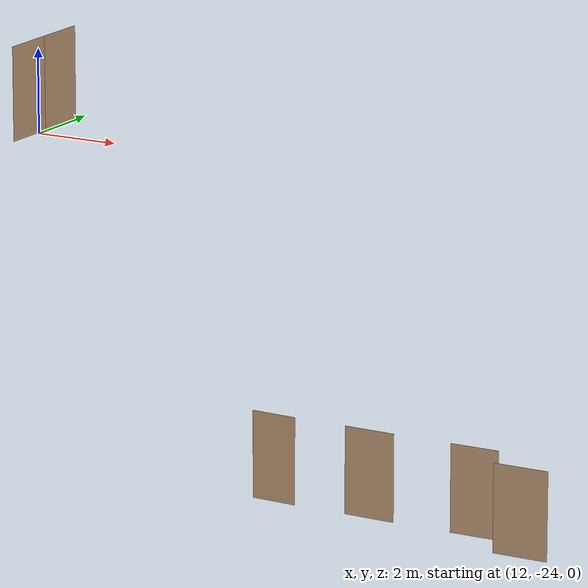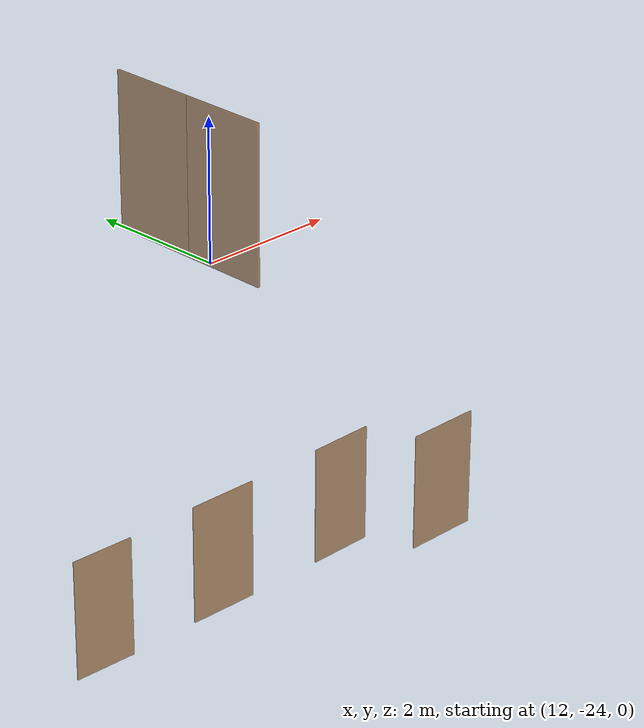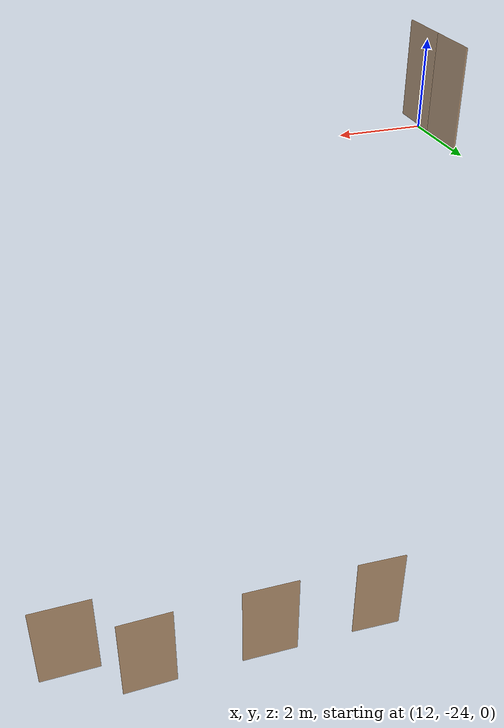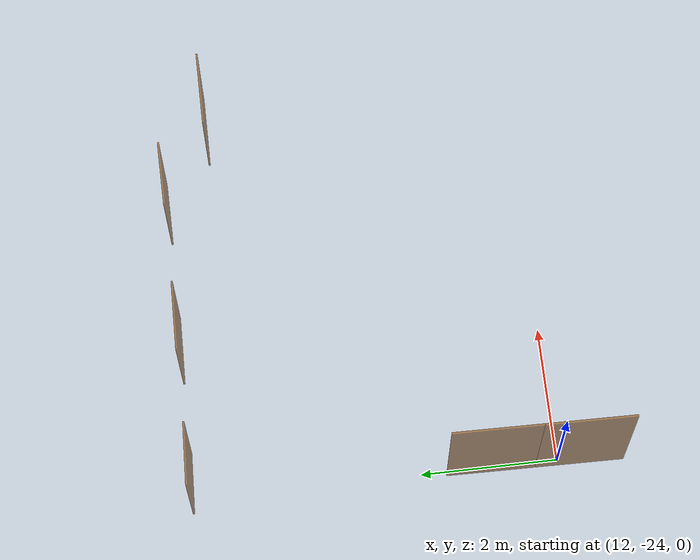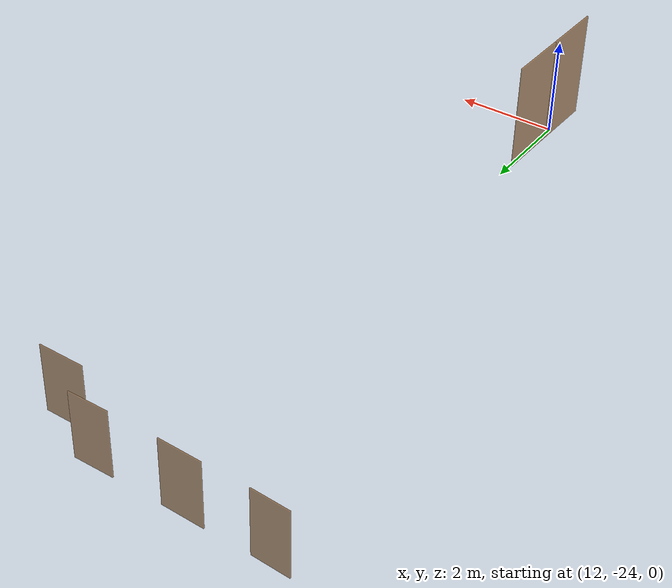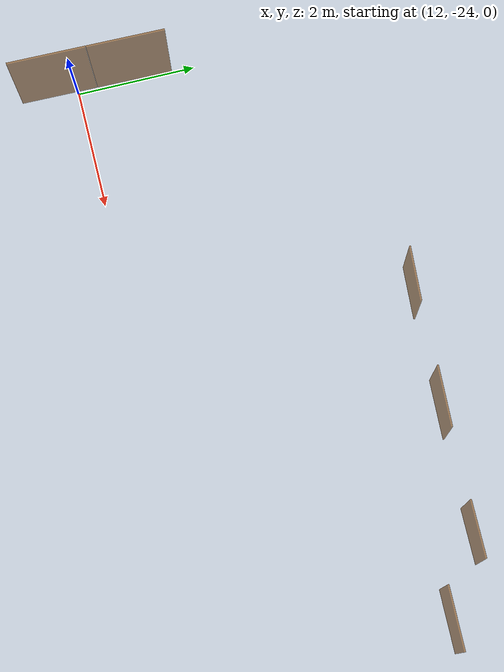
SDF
<sdf version="1.7">
 <world name="sim_world">
  <model name="door8">
   <pose>11.94001371385336 -23.66581940273805 0.0 0 0 -1.5875025411483974</pose>
   <link name="right">
    <pose>0.6496603259492142 0 1.11 0 0 0</pose>
    <visual name="right_visual">
     <geometry><box><size>1.2893206518984284 0.03 2.2</size></box></geometry>
     <material>
      <ambient>0.5 0.25 0 0.6</ambient>
      <diffuse>0.5 0.25 0 0.6</diffuse>
      <pbr><metal><metalness>0.0</metalness></metal></pbr>
     </material>
    </visual>
    <collision name="right_collision">
     <geometry><box><size>1.2893206518984284 0.03 2.2</size></box></geometry>
     <surface><contact><collide_bitmask>0x02</collide_bitmask></contact></surface>
    </collision>
    <inertial>
     <mass>50.0</mass>
     <inertia><ixx>20.17041666666667</ixx><iyy>27.093115597549126</iyy><izz>6.930198930882452</izz></inertia>
    </inertial>
   </link>
   <joint name="right_joint" type="revolute">
    <parent>world</parent>
    <child>right</child>
    <axis><xyz>0 0 -1</xyz><limit><lower>0</lower><upper>1.57</upper></limit></axis>
    <pose>0.6496603259492142 0 0 0 0 0</pose>
   </joint>
   <link name="left">
    <pose>-0.6496603259492142 0 1.11 0 0 0</pose>
    <visual name="left_visual">
     <geometry><box><size>1.2893206518984284 0.03 2.2</size></box></geometry>
     <material>
      <ambient>0.5 0.25 0 0.6</ambient>
      <diffuse>0.5 0.25 0 0.6</diffuse>
      <pbr><metal><metalness>0.0</metalness></metal></pbr>
     </material>
    </visual>
    <collision name="left_collision">
     <geometry><box><size>1.2893206518984284 0.03 2.2</size></box></geometry>
     <surface><contact><collide_bitmask>0x02</collide_bitmask></contact></surface>
    </collision>
    <inertial>
     <mass>50.0</mass>
     <inertia><ixx>20.17041666666667</ixx><iyy>27.093115597549126</iyy><izz>6.930198930882452</izz></inertia>
    </inertial>
   </link>
   <joint name="left_joint" type="revolute">
    <parent>world</parent>
    <child>left</child>
    <axis><xyz>0 0 -1</xyz><limit><lower>-1.57</lower><upper>0</upper></limit></axis>
    <pose>-0.6496603259492142 0 0 0 0 0</pose>
   </joint>
   <plugin name="register_component" filename="libregister_component.so">
    <component name="Door">
     <v_max_door>0.5</v_max_door>
     <a_max_door>0.3</a_max_door>
     <a_nom_door>0.15</a_nom_door>
     <dx_min_door>0.01</dx_min_door>
     <f_max_door>500.0</f_max_door>
     <ros_interface>true</ros_interface>
     <door name="door8" type="DoubleSwingDoor" left_joint_name="left_joint" right_joint_name="right_joint"/>
    </component>
   </plugin>
  </model>
  <model name="door11">
   <pose>22.026146063012423 -19.219296318400083 -10.0 0 0 3.135121069938691</pose>
   <link name="right">
    <pose>0 0 1.11 0 0 0</pose>
    <visual name="right_visual">
     <geometry><box><size>1.400921036440383 0.03 2.2</size></box></geometry>
     <material>
      <ambient>0.5 0.25 0 0.6</ambient>
      <diffuse>0.5 0.25 0 0.6</diffuse>
      <pbr><metal><metalness>0.0</metalness></metal></pbr>
     </material>
    </visual>
    <collision name="right_collision">
     <geometry><box><size>1.400921036440383 0.03 2.2</size></box></geometry>
     <surface><contact><collide_bitmask>0x02</collide_bitmask></contact></surface>
    </collision>
    <inertial>
     <mass>50.0</mass>
     <inertia><ixx>20.17041666666667</ixx><iyy>28.344082293088327</iyy><izz>8.181165626421654</izz></inertia>
    </inertial>
   </link>
   <joint name="right_joint" type="revolute">
    <parent>world</parent>
    <child>right</child>
    <axis><xyz>0 0 1</xyz><limit><lower>0</lower><upper>1.57</upper></limit></axis>
    <pose>0.7054605182201915 0 0 0 0 0</pose>
   </joint>
   <plugin name="register_component" filename="libregister_component.so">
    <component name="Door">
     <v_max_door>0.5</v_max_door>
     <a_max_door>0.3</a_max_door>
     <a_nom_door>0.15</a_nom_door>
     <dx_min_door>0.01</dx_min_door>
     <f_max_door>500.0</f_max_door>
     <ros_interface>true</ros_interface>
     <door name="door11" type="SwingDoor" left_joint_name="empty_joint" right_joint_name="right_joint"/>
    </component>
   </plugin>
  </model>
  <model name="door17">
   <pose>14.94088052865908 -18.280598823191003 -10.0 0 0 3.0943538494370033</pose>
   <link name="right">
    <pose>0 0 1.11 0 0 0</pose>
    <visual name="right_visual">
     <geometry><box><size>1.1733365822123862 0.03 2.2</size></box></geometry>
     <material>
      <ambient>0.5 0.25 0 0.6</ambient>
      <diffuse>0.5 0.25 0 0.6</diffuse>
      <pbr><metal><metalness>0.0</metalness></metal></pbr>
     </material>
    </visual>
    <collision name="right_collision">
     <geometry><box><size>1.1733365822123862 0.03 2.2</size></box></geometry>
     <surface><contact><collide_bitmask>0x02</collide_bitmask></contact></surface>
    </collision>
    <inertial>
     <mass>50.0</mass>
     <inertia><ixx>20.17041666666667</ixx><iyy>25.902994729824353</iyy><izz>5.740078063157682</izz></inertia>
    </inertial>
   </link>
   <joint name="right_joint" type="revolute">
    <parent>world</parent>
    <child>right</child>
    <axis><xyz>0 0 1</xyz><limit><lower>0</lower><upper>1.57</upper></limit></axis>
    <pose>0.5916682911061931 0 0 0 0 0</pose>
   </joint>
   <plugin name="register_component" filename="libregister_component.so">
    <component name="Door">
     <v_max_door>0.5</v_max_door>
     <a_max_door>0.3</a_max_door>
     <a_nom_door>0.15</a_nom_door>
     <dx_min_door>0.01</dx_min_door>
     <f_max_door>500.0</f_max_door>
     <ros_interface>true</ros_interface>
     <door name="door17" type="SwingDoor" left_joint_name="empty_joint" right_joint_name="right_joint"/>
    </component>
   </plugin>
  </model>
  <model name="door18">
   <pose>17.569435664863242 -18.324754895509002 -10.0 0 0 -0.025097312929579885</pose>
   <link name="right">
    <pose>0 0 1.11 0 0 0</pose>
    <visual name="right_visual">
     <geometry><box><size>1.3187793357036819 0.03 2.2</size></box></geometry>
     <material>
      <ambient>0.5 0.25 0 0.6</ambient>
      <diffuse>0.5 0.25 0 0.6</diffuse>
      <pbr><metal><metalness>0.0</metalness></metal></pbr>
     </material>
    </visual>
    <collision name="right_collision">
     <geometry><box><size>1.3187793357036819 0.03 2.2</size></box></geometry>
     <surface><contact><collide_bitmask>0x02</collide_bitmask></contact></surface>
    </collision>
    <inertial>
     <mass>50.0</mass>
     <inertia><ixx>20.17041666666667</ixx><iyy>27.413245567829357</iyy><izz>7.2503289011626855</izz></inertia>
    </inertial>
   </link>
   <joint name="right_joint" type="revolute">
    <parent>world</parent>
    <child>right</child>
    <axis><xyz>0 0 -1</xyz><limit><lower>0</lower><upper>1.57</upper></limit></axis>
    <pose>0.664389667851841 0 0 0 0 0</pose>
   </joint>
   <plugin name="register_component" filename="libregister_component.so">
    <component name="Door">
     <v_max_door>0.5</v_max_door>
     <a_max_door>0.3</a_max_door>
     <a_nom_door>0.15</a_nom_door>
     <dx_min_door>0.01</dx_min_door>
     <f_max_door>500.0</f_max_door>
     <ros_interface>true</ros_interface>
     <door name="door18" type="SwingDoor" left_joint_name="empty_joint" right_joint_name="right_joint"/>
    </component>
   </plugin>
  </model>
  <model name="door19">
   <pose>20.37946613005124 -18.33755886100709 -10.0 0 0 -3.136219686990642</pose>
   <link name="right">
    <pose>0 0 1.11 0 0 0</pose>
    <visual name="right_visual">
     <geometry><box><size>1.2422816077458356 0.03 2.2</size></box></geometry>
     <material>
      <ambient>0.5 0.25 0 0.6</ambient>
      <diffuse>0.5 0.25 0 0.6</diffuse>
      <pbr><metal><metalness>0.0</metalness></metal></pbr>
     </material>
    </visual>
    <collision name="right_collision">
     <geometry><box><size>1.2422816077458356 0.03 2.2</size></box></geometry>
     <surface><contact><collide_bitmask>0x02</collide_bitmask></contact></surface>
    </collision>
    <inertial>
     <mass>50.0</mass>
     <inertia><ixx>20.17041666666667</ixx><iyy>26.596931637264916</iyy><izz>6.434014970598243</izz></inertia>
    </inertial>
   </link>
   <joint name="right_joint" type="revolute">
    <parent>world</parent>
    <child>right</child>
    <axis><xyz>0 0 1</xyz><limit><lower>0</lower><upper>1.57</upper></limit></axis>
    <pose>0.6261408038729178 0 0 0 0 0</pose>
   </joint>
   <plugin name="register_component" filename="libregister_component.so">
    <component name="Door">
     <v_max_door>0.5</v_max_door>
     <a_max_door>0.3</a_max_door>
     <a_nom_door>0.15</a_nom_door>
     <dx_min_door>0.01</dx_min_door>
     <f_max_door>500.0</f_max_door>
     <ros_interface>true</ros_interface>
     <door name="door19" type="SwingDoor" left_joint_name="empty_joint" right_joint_name="right_joint"/>
    </component>
   </plugin>
  </model>
 </world>
</sdf>
